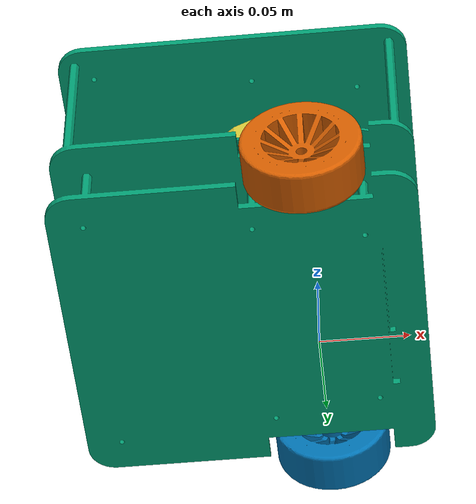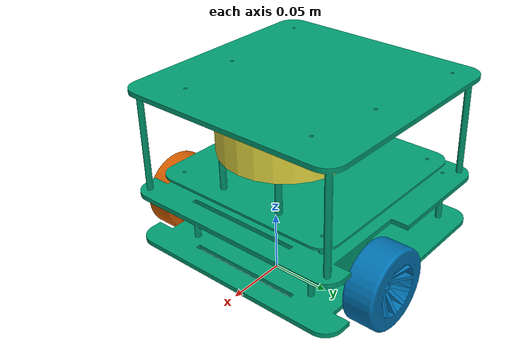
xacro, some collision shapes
<?xml version="1.0"?>
<robot name="turtlebro">

  <joint name="base_joint" type="fixed">
    <parent link="base_footprint"/>
    <child link="base_link"/>
    <origin xyz="0.0 0.0 0.033" rpy="0 0 0"/>
  </joint>

  <joint name="scan_joint" type="fixed">
    <parent link="base_link"/>
    <child link="base_laser"/>
    <origin xyz="0.0 0 0.095" rpy="0 0 3.1415"/>
  </joint>

  <joint name="imu_joint" type="fixed">
    <parent link="base_link"/>
    <child link="imu_link"/>
    <origin xyz="0.0 0 0.035" rpy="0 0 0"/>
  </joint>

  <joint name="wheel_left_joint" type="fixed">
    <parent link="base_link"/>
    <child link="wheel_left_link"/>
    <origin xyz="0 0.103 0" rpy="-1.5708 0 0"/>
    <axis xyz="0 0 1"/>
  </joint>

  <joint name="wheel_right_joint" type="fixed">
    <parent link="base_link"/>
    <child link="wheel_right_link"/>
    <origin xyz="0 -0.103 0" rpy="1.5708 0 0"/>
    <axis xyz="0 0 1"/>
  </joint>

  <link name="base_footprint"/>
  <link name="imu_link">
  </link>

  <link name="base_link">
    <visual>
      <origin xyz="0 0 0" rpy="0 0 0"/>
      <geometry>
        <mesh filename="package://turtlebro/meshes/base_link_top_plate.dae" scale="0.001 0.001 0.001"/>
      </geometry>
    </visual>
    <collision>
      <origin xyz="-0.03 0 0.052" rpy="0 0 0"/>
      <geometry>
        <box size="0.225 0.225 0.14"/>
      </geometry>
    </collision>
    <inertial>
      <origin xyz="0 0 0" rpy="0 0 0"/>
      <mass value="1.3729096e+00"/>
      <inertia ixx="8.7002718e-03" ixy="-4.7576583e-05" ixz="1.1160499e-04"
               iyy="8.6195418e-03" iyz="-3.5422299e-06"
               izz="1.4612727e-02" />
    </inertial>
  </link>

  <link name="base_laser">
    <visual>
      <origin xyz="0 0 0" rpy="0 0 0"/>
      <geometry>
        <mesh filename="package://turtlebro/meshes/lds.stl" scale="0.001 0.001 0.001"/>
      </geometry>
    </visual>

    <collision>
      <origin xyz="0.015 0 -0.0065" rpy="0 0 0"/>
      <geometry>
        <cylinder length="0.0315" radius="0.055"/>
      </geometry>
    </collision>

    <inertial>
      <mass value="0.114" />
      <origin xyz="0 0 0" />
      <inertia ixx="0.001" ixy="0.0" ixz="0.0"
               iyy="0.001" iyz="0.0"
               izz="0.001" />
    </inertial>
  </link>

  <link name="wheel_left_link">
    <visual>
      <origin xyz="0 0 0" rpy="0 0 0"/>
      <geometry>
        <mesh filename="package://turtlebro/meshes/wheel.dae" scale="0.001 0.001 0.001"/>
      </geometry>
    </visual>
    <collision>
      <origin xyz="0 0 0" rpy="0 0 0"/>
      <geometry>
        <cylinder length="0.025" radius="0.030"/>
      </geometry>
    </collision>
    <inertial>
      <origin xyz="0 0 0" />
      <mass value="2.8498940e-02" />
      <inertia ixx="1.1175580e-05" ixy="-4.2369783e-11" ixz="-5.9381719e-09"
               iyy="1.1192413e-05" iyz="-1.4400107e-11"
               izz="2.0712558e-05" />
      </inertial>
  </link>

  <link name="wheel_right_link">
    <visual>
      <origin xyz="0 0 0" rpy="0 0 0"/>
      <geometry>
        <mesh filename="package://turtlebro/meshes/wheel.dae"  scale="0.001 0.001 0.001"/>
      </geometry>
    </visual>
    <collision>
      <origin xyz="0 0 0" rpy="0 0 0"/>
      <geometry>
        <cylinder length="0.025" radius="0.030"/>
      </geometry>
    </collision>
    <inertial>
      <origin xyz="0 0 0" />
      <mass value="2.8498940e-02" />
      <inertia ixx="1.1175580e-05" ixy="-4.2369783e-11" ixz="-5.9381719e-09"
               iyy="1.1192413e-05" iyz="-1.4400107e-11"
               izz="2.0712558e-05" />
      </inertial>
  </link>

</robot>
